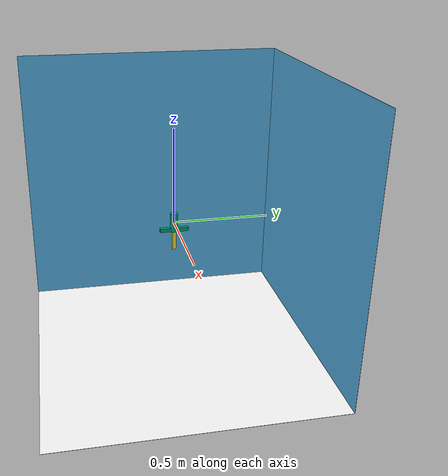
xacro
<?xml version="1.0"?>
<robot name="gripper" xmlns:xacro="http://www.ros.org/wiki/xacro">

        <!-- Includes -->
        <xacro:include filename="$(find arne_motion_simulator)/urdf/gripper.urdf.xacro"/>

        <xacro:property name="side" value="1.5" />

        <link name="world" />

        <link name="sides">
                <visual name="bottom">
                        <origin xyz="0 0 ${-0.5 * side}" rpy="0 0 0" />
                        <material name="white">
                                <color rgba="1.0 1.0 1.0 1.0"/>
                        </material>
                        <geometry>
                                <box size="${side} ${side} 0.001"/>
                        </geometry>
                </visual>
                <visual name="back">
                        <origin xyz="${-0.5 * side} 0 0" rpy="0 0 0" />
                        <geometry>
                                <box size="0.001 ${side} ${side}"/>
                        </geometry>
                </visual>
                <visual name="right">
                        <origin xyz="0 ${0.5 * side} 0" rpy="0 0 0" />
                        <geometry>
                                <box size="${side} 0.001 ${side}"/>
                        </geometry>
                </visual>
        </link>

        <joint name="test" type="fixed">
                <origin xyz="0 0 0" rpy="0 0 0"/>
                <parent link="world"/>
                <child link="sides"/>
        </joint>

        <!-- gripper -->
        <xacro:gripper parent="world"/>

</robot>

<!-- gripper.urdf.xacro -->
<robot xmlns:xacro="http://ros.org/wiki/xacro" name="gripper">

<xacro:macro name="gripper" params="parent">

        <xacro:property name="finger_radius" value="0.01" />
        <xacro:property name="finger_length" value="0.1" />

        <link name="gripper">
                <visual name="visual">
                        <geometry>
                                <cylinder length="0.1" radius="0.02"/>
                        </geometry>
                </visual>
                <visual name="visual">
                        <origin xyz="0 0 ${-0.05 + 0.01}" rpy="0 0 0" />
                        <geometry>
                                <box size="0.02 0.15 0.02"/>
                        </geometry>
                </visual>
        </link>
        <joint name="finger_left_joint" type="prismatic">
                <origin xyz="0 0 0" rpy="0 0 0"/>
                <axis xyz="0 1 0" />
                <limit upper="0" lower="0" velocity="0" effort="0"/>
                <parent link="gripper"/>
                <child link="finger_left"/>
        </joint>
        <link name="finger_left">
                <visual name="visual">
                        <origin xyz="0 0 -0.1" rpy="0 0 0" />
                        <geometry>
                                <box size="0.02 0.02 0.1"/>
                        </geometry>
                </visual>
        </link>
        <joint name="finger_right_joint" type="prismatic">
                <origin xyz="0 0 0" rpy="0 0 0"/>
                <axis xyz="0 1 0" />
                <limit upper="0" lower="0" velocity="0" effort="0"/>
                <mimic joint="finger_left_joint" multiplier="-1" />
                <parent link="gripper"/>
                <child link="finger_right"/>
        </joint>
        <link name="finger_right">
                <visual name="visual">
                        <origin xyz="0 0 -0.1" rpy="0 0 0" />
                        <geometry>
                                <box size="0.02 0.02 0.1"/>
                        </geometry>
                </visual>
        </link>
        <joint name="pose" type="floating">
                <origin xyz="0 0 0" rpy="0 0 0"/>
                <parent link="${parent}"/>
                <child link="gripper"/>
        </joint>
</xacro:macro>
</robot>
